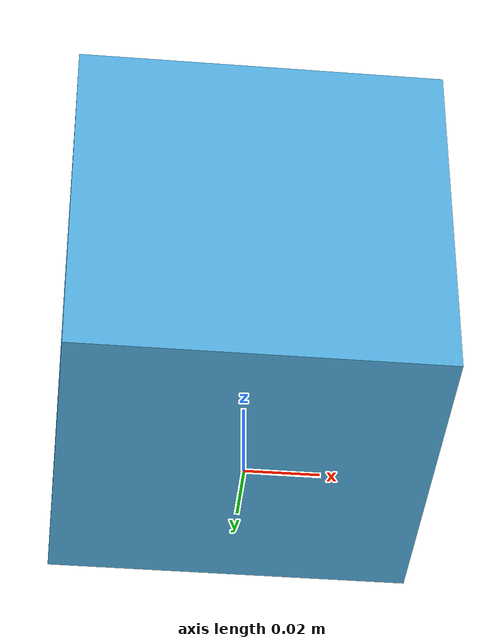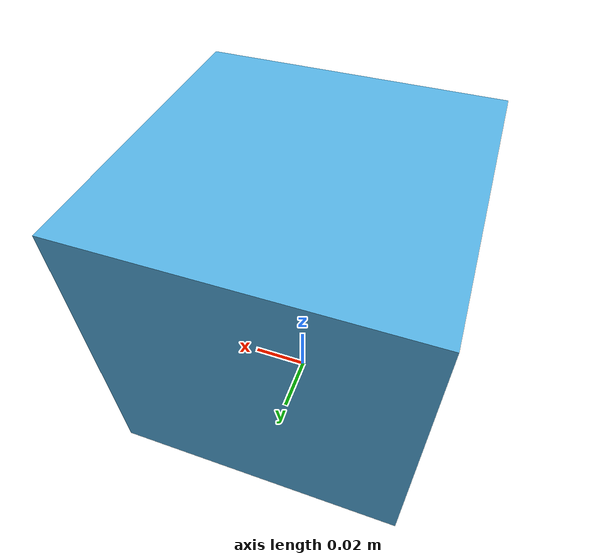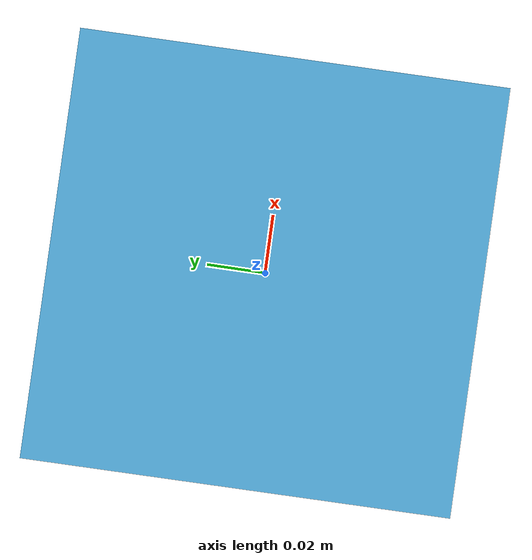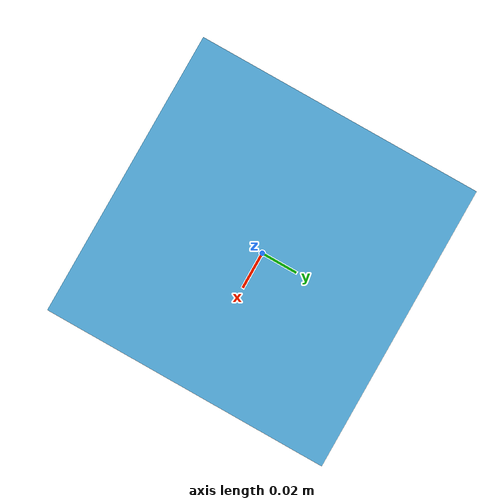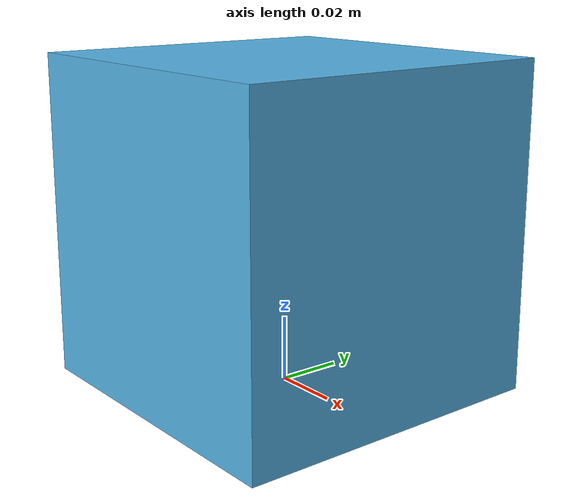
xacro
<?xml version="1.0"?>
<robot name="mini_test">
  <link name="world"/>
  <link name="base_link">
    <inertial><mass value="1.0"/><inertia ixx="0.01" ixy="0" ixz="0" iyy="0.01" iyz="0" izz="0.01"/></inertial>
    <visual><geometry><box size="0.1 0.1 0.1"/></geometry></visual>
    <collision><geometry><box size="0.1 0.1 0.1"/></geometry></collision>
  </link>
  <joint name="base_joint" type="fixed">
    <parent link="world"/><child link="base_link"/><origin xyz="0 0 0.05" rpy="0 0 0"/>
  </joint>
  <link name="slider_link">
    <inertial><mass value="0.1"/><inertia ixx="0.001" ixy="0" ixz="0" iyy="0.001" iyz="0" izz="0.001"/></inertial>
    <visual><geometry><box size="0.02 0.02 0.02"/></geometry></visual>
    <collision><geometry><box size="0.02 0.02 0.02"/></geometry></collision>
  </link>
  <joint name="test_slider" type="prismatic">
    <parent link="base_link"/><child link="slider_link"/><axis xyz="1 0 0"/>
    <limit effort="5" velocity="1" lower="-0.05" upper="0.05"/>
  </joint>
  <gazebo>
    <plugin filename="libgazebo_ros2_control.so" name="gazebo_ros2_control">
      <ros><node_name>arm_gazebo_ros2_control</node_name></ros>
      <robot_param>robot_description</robot_param>
      <robot_param_node>robot_state_publisher</robot_param_node>
    </plugin>
  </gazebo>
  <ros2_control name="mini_system" type="system">
    <hardware><plugin>gazebo_ros2_control/GazeboSystem</plugin></hardware>
    <joint name="test_slider"><command_interface name="effort"/><state_interface name="position"/><state_interface name="velocity"/></joint>
  </ros2_control>
</robot>
